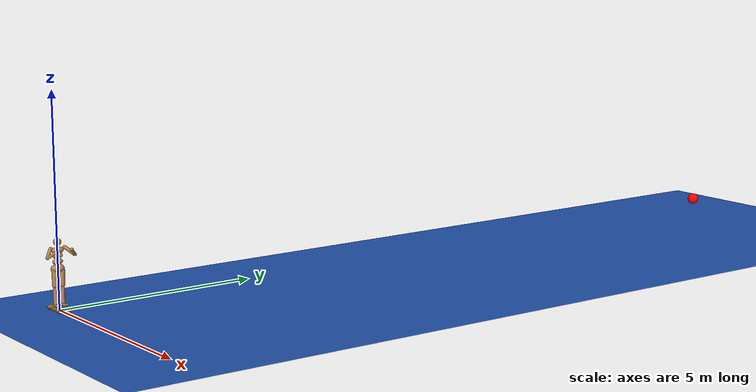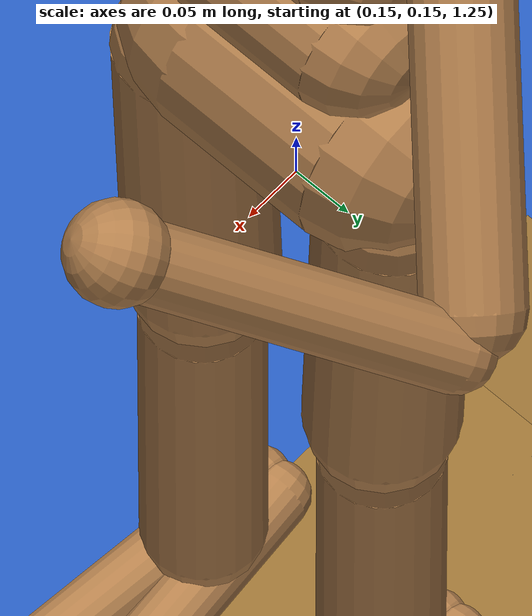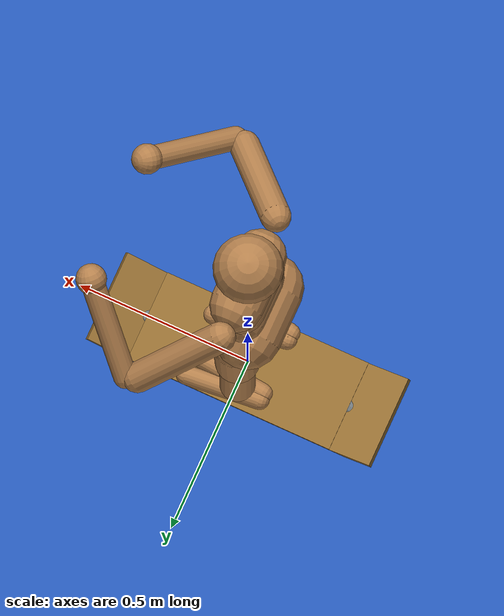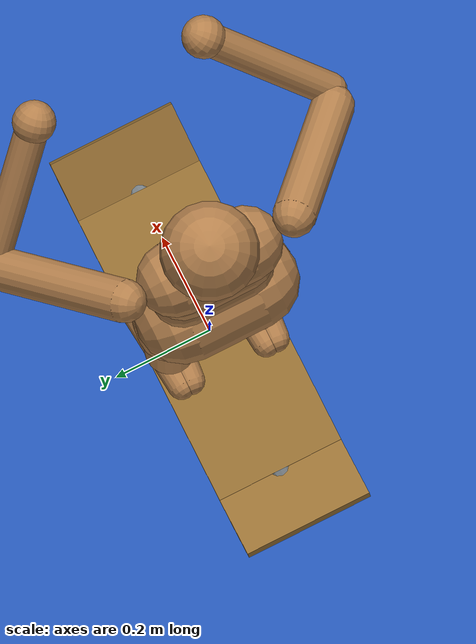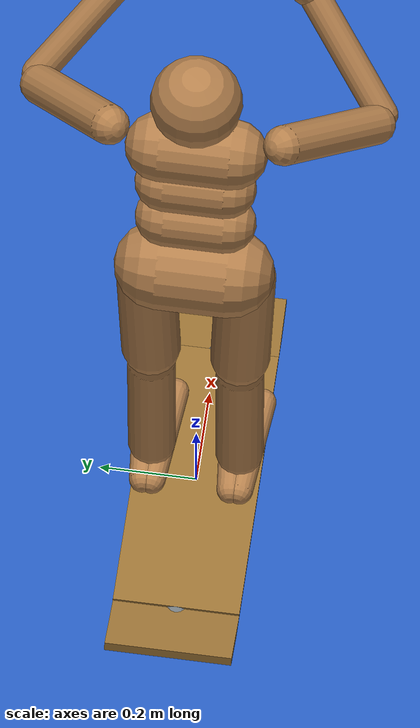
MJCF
<mujoco model="Skateboard Humanoid">
  <include file="../../common.xml"/>
  <include file="./humanoid.xml" />
  <include file="../skateboard.xml" />
  <size memory="800K"/>
  <!-- add physics time step 0.015-->
  <option timestep="0.015"/>
   <custom>
    <numeric name="agent_planner" data="3" />
    <numeric name="agent_horizon" data="0.35" />
    <numeric name="agent_timestep" data="0.015" />
    <numeric name="sampling_spline_points" data="6" />
    <numeric name="sampling_exploration" data="0.05" />
    <numeric name="residual_Height Goal" data="1.35 0.0 1.7" />
    <numeric name="residual_Velocity" data="0 -5 5" />
    <numeric name="residual_Tilt angle" data="0 -0.26 0.26" />
    <numeric name="residual_rFeet pos" data="0 0 1.0" />
    <numeric name="residual_LFeet pos" data="0 0 1.0" />
    <numeric name="residual_rFeet orientation" data="0 -1.56 1.56" />
    <numeric name="ilqg_num_rollouts" data="8" />
    <numeric name="ilqg_regularization_type" data="1" />
    <numeric name="ilqg_representation" data="2" />
  </custom>

  <worldbody>
    <camera name="side-far" mode="trackcom" pos="-3.794 -2.634 2.085" xyaxes="0.536 -0.844 0.000 0.294 0.187 0.937"/>
    <camera name="close" mode="trackcom"  pos="-1.695 -1.870 1.312" xyaxes="0.702 -0.713 -0.000 0.261 0.257 0.930"/>
    <camera name="top" mode="trackcom" pos="-0.405 -1.688 20.714" xyaxes="-0.008 -1.000 0.000 1.000 -0.008 0.017"/>
    <body name="goal" mocap="true" pos=".3 20 0.26">
      <geom size="0.15" contype="0" conaffinity="0" rgba="1 0 0 1" group="2"/>
    </body>
  </worldbody>

  <sensor>
    <user name="Velocity" dim="1" user="0 0 0.0 100.0" />
    <user name="Goal Position" dim="3" user="6 0 0.0 100.0 0.1" />
    <user name="Goal Orientation" dim="1" user="0 0 0 100.0" />
    <user name="Height" dim="1" user="6 80.0 0.0 100.0 0.1" />
    <user name="Balance" dim="1" user="6 50.0 0.0 100.0 0.1" />
    <user name="Board XY" dim="1" user="6 50.0 0.0 100.0 0.1" />
    <user name="Upright" dim="8" user="2 5.0 0.0 25.0 0.01" />
    <user name="CoM Vel." dim="2" user="6 50.0 0.0 100.0 0.1" />
    <user name="Right Foot on Board" dim="1" user="6 40 0.0 100.0 0.1" />
    <user name="Left Foot on Board" dim="1" user="6 40 0.0 100.0 0.1" />
    <user name="Tilt angle" dim="1" user="0 0 0 100.0" />
    <user name="rFeet orientation" dim="1" user="0 0 0 100.0" />

    <user name="Joint Vel." dim="22" user="0 0.01 0.0 0.1" />
    <user name="Control" dim="21" user="3 0.025 0.0 0.1 0.3" />

    <framepos name="trace0" objtype="body" objname="board_center"/>
    <framepos name="torso_position" objtype="body" objname="torso"/>
    <framepos name="head_position" objtype="body" objname="head"/>
    <framequat name="head_orientation" objtype="body" objname="head"/>
    <framezaxis name="torso_zaxis" objtype="body" objname="torso"/>
    <framelinvel name="torso_subtreelinvel" objtype="body" objname="torso" />
    <subtreecom name="torso_subtreecom" body="torso"/>
    <framexaxis name="torso_forward" objtype="body" objname="torso" />

    <framepos name="sp0" objtype="site" objname="sp0"/>
    <framepos name="sp1" objtype="site" objname="sp1"/>
    <framepos name="sp2" objtype="site" objname="sp2"/>
    <framepos name="sp3" objtype="site" objname="sp3"/>
    <framepos name="tracking_foot_left" objtype="site" objname="tracking[ltoe]"/>
    <framepos name="tracking_foot_right" objtype="site" objname="tracking[rtoe]"/>

    <framezaxis name="torso_up" objtype="xbody" objname="torso"/>
    <framezaxis name="pelvis_up" objtype="xbody" objname="pelvis"/>

    <framezaxis name="foot_right_up" objtype="xbody" objname="foot_right"/>
    <framezaxis name="foot_left_up" objtype="xbody" objname="foot_left"/>

    <framepos name="track-back-plate" objtype="site" objname="track-back-plate"/>
    <framepos name="track-front-plate" objtype="site" objname="track-front-plate"/>

    <subtreelinvel name="foot_right_vel" body="foot_right"/>
    <subtreelinvel name="foot_left_vel" body="foot_left"/>
    <framelinvel name="skateboard_framelinvel" objtype="body" objname="skateboard"/>
  </sensor>

  <keyframe>
   <!-- PUSH INIT -->
    <key name="home" qpos='-0.580893 -0.380911 1.18326 0.473358 -0.0984097 0.130169 0.865624 0.297602 -0.974663 -0.0179795 -0.514885 -0.132614 0.346061 -1.21863 -0.760553 -0.704605 -0.16429 -0.638325 0.352434 -0.651989 0.348715 -0.811043 1.00825 0.791914 -1.73602 0.218656 0.0649717 -1.43441 -0.557197 -0.355524 0.0985215 -0.720079 8.67539e-05 -4.21686e-05 -0.693892 0.0218445 0.0194171 -88.5227 -88.5638 0.0165476 -88.4953 -88.5503'/>

  <!-- UPRIGHT INITIAL SPEED -->
  <key name="upright_speed" qpos='-0.346285 1.58886 1.30323 0.0875386 -0.138341 0.0797165 0.983282 -0.560394 -0.627535 0.023249 -0.0599903 -0.111583 -0.228211 -0.746062 -0.155623 0.149264 0.179301 0.541888 0.286944 -0.705611 -0.602122 -0.206549 0.48941 0.135232 -1.75036 0.545177 0.254236 -1.6021 -0.346531 1.63963 0.0985581 -0.690693 0.00026086 0.000693116 -0.723147 0.041312 0.0242612 -36.7335 -36.7295 0.0243332 -36.7253 -36.7376'
  qvel="0 5 0 0 0 0 0 0 0 0 0 0 0 0 0 0 0 0 0 0 0 0 0 0 0 0 0 0 5 0 0 0 0 0 0 0 0 0 0 0"/>
  <!-- CROUCHED INITIAL SPEED -->
  <key name="crouched_speed"  qpos='-0.525946 -0.36578 1.09431 0.337874 -0.134928 0.205427 0.908535 -0.424578 -0.16616 -0.495801 -0.468328 0.569092 -1.67877 -1.20059 -0.434139 0.306221 0.00660043 -0.883754 -1.32983 -1.83521 -1.04158 -0.184538 0.146789 -0.429759 -0.396783 0.950078 0.0303084 -1.71569 -0.538169 -0.366389 0.0992553 -0.716109 -0.00195445 0.0019973 -0.697983 -0.0288003 -0.0193057 -88.8849 -88.919 -0.0194575 -88.7806 -88.851'
  qvel="0 5 0 0 0 0 0 0 0 0 0 0 0 0 0 0 0 0 0 0 0 0 0 0 0 0 0 0 4.5 0 0 0 0 0 0 0 0 0 0 0"/>
  <!-- WELDED PUSH INIT -->
  <key name="weld_push" qpos='-0.704934 -0.271105 1.17139 0.601998 0.0285527 -0.0176907 0.797791 -0.290037 0.0614182 -0.071186 0.166288 0.0842589 -0.598809 -1.50382 -0.876758 -0.182495 -0.268364 -0.183978 -0.353662 -1.07908 -0.631876 1.23081 0.970828 -0.664467 -1.75432 1.05474 -0.663433 -1.75382 -0.675349 -0.267592 0.0983024 -0.711107 0.000421966 0.000333692 -0.703084 0.0446937 0.0220051 -93.2538 -93.1654 0.0223697 -93.1169 -93.3272'
  qvel="0 0 0 0 0 0 0 0 0 0 0 0 0 0 0 0 0 0 0 0 0 0 0 0 0 0 0 0 0 0 0 0 0 0 0 0 0 0 0 0"/>

  </keyframe>
  <equality>
  </equality>
  <contact>
    <exclude body1="foot_right" body2="wheel-front-left"/>
    <exclude body1="foot_right" body2="wheel-front-right"/>
    <exclude body1="foot_left" body2="wheel-back-left"/>
    <exclude body1="foot_left" body2="wheel-back-right"/>
    <exclude body1="foot_left" body2="bushings-and-hanger-back"/>
    <exclude body1="foot_left" body2="baseplate-back"/>
    <exclude body1="shin_left" body2="wheel-back-left"/>
    <exclude body1="shin_left" body2="wheel-back-right"/>
    <exclude body1="shin_left" body2="bushings-and-hanger-back"/>
    <exclude body1="shin_left" body2="baseplate-back"/>
  </contact>
</mujoco>

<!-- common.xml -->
<mujoco>

    <visual>
        <headlight ambient=".4 .4 .4" diffuse=".8 .8 .8" specular="0.1 0.1 0.1"/>
        <map znear=".01"/>
        <quality shadowsize="2048"/>
        <global elevation="-15"/>
    </visual>

    <asset>
        <texture name="blue_grid" type="2d" builtin="checker" rgb1=".02 .14 .44" rgb2=".27 .55 1" width="300" height="300" mark="edge" markrgb="1 1 1"/>
        <material name="blue_grid" texture="blue_grid" texrepeat="1 1" texuniform="true" reflectance=".2"/>

        <texture name="grey_grid" type="2d" builtin="checker" rgb1=".26 .26 .26" rgb2=".6 .6 .6" width="300" height="300" mark="edge" markrgb="1 1 1"/>
        <material name="grey_grid" texture="grey_grid" texrepeat="1 1" texuniform="true" reflectance=".2"/>
        <texture name="skybox" type="skybox" builtin="gradient" rgb1=".66 .79 1" rgb2=".9 .91 .93" width="800" height="800"/>

        <material name="self" rgba=".7 .5 .3 1"/>
        <material name="self_default" rgba=".7 .5 .3 1"/>
        <material name="self_highlight" rgba="0 .5 .3 1"/>
        <material name="effector" rgba=".7 .4 .2 1"/>
        <material name="effector_default" rgba=".7 .4 .2 1"/>
        <material name="effector_highlight" rgba="0 .5 .3 1"/>
        <material name="decoration" rgba=".2 .6 .3 1"/>
        <material name="eye" rgba="0 .2 1 1"/>
        <material name="target" rgba=".6 .3 .3 1"/>
        <material name="target_default" rgba=".6 .3 .3 1"/>
        <material name="target_highlight" rgba=".6 .3 .3 .4"/>
        <material name="site" rgba=".5 .5 .5 .3"/>
    </asset>

    <size memory="1M"/>

    <statistic extent="0.4" center="0.3 0.1 0"/>

    <visual>
        <quality shadowsize="8192"/>
        <global azimuth="180" elevation="-30"/>
    </visual>

    <default>
        <geom friction="1.0"/>
    </default>

    <compiler angle="radian" autolimits="true"/>

    <asset>
        <mesh name="apple" file="../../shared_assets/apple/apple.obj" />
        <mesh name="apple_contact0" file="../../shared_assets/apple/contact0.stl"  />
        <mesh name="apple_contact1" file="../../shared_assets/apple/contact1.stl"  />

        <mesh name="doorknob" file="../../shared_assets/doorknob/doorknob.obj" />

        <mesh name="flashlight" file="../../shared_assets/flashlight/flashlight.obj" />
        <mesh name="flashlight_contact0" file="../../shared_assets/flashlight/contact0.stl"  />
        <mesh name="flashlight_contact1" file="../../shared_assets/flashlight/contact1.stl"  />

        <mesh name="hammer" file="../../shared_assets/hammer/hammer.obj" />
        <mesh name="hammer_contact0" file="../../shared_assets/hammer/contact0.stl"  />
        <mesh name="hammer_contact1" file="../../shared_assets/hammer/contact1.stl"  />

        <mesh name="phone" file="../../shared_assets/phone/phone.obj" />
        <mesh name="phone_contact0" file="../../shared_assets/phone/contact0.stl"  />
        <mesh name="phone_contact1" file="../../shared_assets/phone/contact1.stl"  />
        <mesh name="phone_contact2" file="../../shared_assets/phone/contact2.stl"  />

        <mesh name="stapler" file="../../shared_assets/stapler/stapler.obj" />
        <mesh name="stapler_contact0" file="../../shared_assets/stapler/contact0.stl"  />
        <mesh name="stapler_contact1" file="../../shared_assets/stapler/contact1.stl"  />
        <mesh name="stapler_contact2" file="../../shared_assets/stapler/contact2.stl"  />
        <mesh name="stapler_contact3" file="../../shared_assets/stapler/contact3.stl"  />
        <mesh name="stapler_contact4" file="../../shared_assets/stapler/contact4.stl"  />

        <mesh name="waterbottle" file="../../shared_assets/waterbottle/waterbottle.obj" />
        <mesh name="waterbottle_contact0" file="../../shared_assets/waterbottle/contact0.stl"  />
        <mesh name="waterbottle_contact1" file="../../shared_assets/waterbottle/contact1.stl"  />
    </asset>

</mujoco>

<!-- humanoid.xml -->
<mujoco model="Humanoid">

  <statistic extent="2" center="0 0 1"/>

  <default>
    <motor ctrlrange="-1 1" ctrllimited="true"/>
    <site size=".04" group="3"/>
    <default class="body">

      <!-- geoms -->
      <geom type="capsule" condim="1" friction=".7" solimp=".9 .99 .003" solref=".015 1" material="self"/>
      <default class="thigh">
        <geom size=".06"/>
      </default>
      <default class="shin">
        <geom fromto="0 0 0 0 0 -.35"  size=".049"/>
      </default>
      <default class="foot">
        <geom size=".027"/>
        <default class="foot1">
          <geom fromto="-.07 -.01 0 .14 -.03 0"/>
        </default>
        <default class="foot2">
          <geom fromto="-.07 .01 0 .14  .03 0"/>
        </default>
      </default>
      <default class="arm_upper">
        <geom size=".04"/>
      </default>
      <default class="arm_lower">
        <geom size=".031"/>
      </default>
      <default class="hand">
        <geom type="sphere" size=".04"/>
      </default>

      <!-- joints -->
      <joint type="hinge" damping=".2" stiffness="1" armature=".01" limited="true" solimplimit="0 .99 .01"/>
      <default class="joint_big">
        <joint damping="5" stiffness="10"/>
        <default class="hip_x">
          <joint range="-30 10"/>
        </default>
        <default class="hip_z">
          <joint range="-60 35"/>
        </default>
        <default class="hip_y">
          <joint axis="0 1 0" range="-150 20"/>
        </default>
        <default class="joint_big_stiff">
          <joint stiffness="20"/>
        </default>
      </default>
      <default class="knee">
        <joint pos="0 0 .02" axis="0 -1 0" range="-160 2"/>
      </default>
      <default class="ankle">
        <joint range="-70 70"/>
        <default class="ankle_y">
          <joint pos="0 0 .08" axis="0 1 0" stiffness="6"/>
        </default>
        <default class="ankle_x">
          <joint pos="0 0 .04" stiffness="3"/>
        </default>
      </default>
      <default class="shoulder">
        <joint range="-85 60"/>
      </default>
      <default class="elbow">
        <joint range="-100 50" stiffness="0"/>
      </default>

      <!-- tracking site -->
      <default class="tracking_site">
        <site type="sphere" size="0.027" rgba="1 0 0 1" group="3"/>
      </default>
    </default>
  </default>

  <worldbody>
    <geom name="floor" type="plane" conaffinity="1" size="50 50 .05" material="blue_grid"/>
    <!-- turn 90 degrees -->
    <body name="torso" pos="0 0 1.382" childclass="body">
      <light name="top" pos="0 0 2" mode="trackcom"/>
      <camera name="back" pos="-3 0 1" xyaxes="0 -1 0 1 0 2" mode="trackcom"/>
      <camera name="side" pos="0 -3 1" xyaxes="1 0 0 0 1 2" mode="trackcom"/>
      <freejoint name="root"/>
      <geom name="torso" fromto="0 -.07 0 0 .07 0" size=".07"/>
      <geom name="waist_upper" fromto="-.01 -.06 -.12 -.01 .06 -.12" size=".06"/>
      <body name="head" pos="0 0 .19">
        <geom name="head" type="sphere" size=".09"/>
        <site name="tracking[head]" class="tracking_site" pos="0.09 0 0" />
        <camera name="egocentric" pos=".09 0 0" xyaxes="0 -1 0 .1 0 1" fovy="80"/>
      </body>
      <body name="waist_lower" pos="-.01 0 -.26">
        <geom name="waist_lower" fromto="0 -.06 0 0 .06 0" size=".06" />
        <joint name="abdomen_z" pos="0 0 .065" axis="0 0 1" range="-45 45" class="joint_big_stiff"/>
        <joint name="abdomen_y" pos="0 0 .065" axis="0 1 0" range="-75 30" class="joint_big"/>
        <body name="pelvis" pos="0 0 -.165">
          <site name="tracking[pelvis]" class="tracking_site" pos="0 0 0.075" size=".05" />
          <joint name="abdomen_x" pos="0 0 .1" axis="1 0 0" range="-35 35" class="joint_big"/>
          <geom name="butt" fromto="-.02 -.07 0 -.02 .07 0" size=".09"/>
          <body name="thigh_right" pos="0 -.1 -.04">
            <site name="tracking[rhip]" class="tracking_site" pos="0 0.025 0.025" />
            <joint name="hip_x_right" axis="1 0 0" class="hip_x"/>
            <joint name="hip_z_right" axis="0 0 1" class="hip_z"/>
            <joint name="hip_y_right" class="hip_y"/>
            <geom name="thigh_right" fromto="0 0 0 0 .01 -.34" class="thigh"/>
            <body name="shin_right" pos="0 .01 -.4">
              <joint name="knee_right" class="knee"/>
              <site name="tracking[rknee]" class="tracking_site" pos="0 0 0.05" />
              <geom name="shin_right" class="shin"/>
              <body name="foot_right" pos="0 0 -.39">
                <joint name="ankle_y_right" class="ankle_y"/>
                <joint name="ankle_x_right" class="ankle_x" axis="1 0 .5"/>
                <geom name="foot1_right" class="foot1"/>
                <geom name="foot2_right" class="foot2"/>
                <site name="foot_right" pos=".05 .03 0" type="sphere" size=".027"/>
                <site name="sp2" pos="-.07 0 0" type="sphere" size=".027"/>
                <site name="sp3" pos=".14 0 0" type="sphere" size=".027"/>
                <body name="heel_right" pos="-0.05 0 0.04">
                  <site name="tracking[rheel]" class="tracking_site" />
                </body>
                <body name="toe_right" pos="0.07 0 -0.01">
                  <site name="tracking[rtoe]" class="tracking_site" />
                </body>
              </body>
            </body>
          </body>
          <body name="thigh_left" pos="0 .1 -.04">
            <site name="tracking[lhip]" class="tracking_site" pos="0 -0.025 0.025" />
            <joint name="hip_x_left" axis="-1 0 0" class="hip_x"/>
            <joint name="hip_z_left" axis="0 0 -1" class="hip_z"/>
            <joint name="hip_y_left" class="hip_y"/>
            <geom name="thigh_left" fromto="0 0 0 0 -.01 -.34" class="thigh"/>
            <body name="shin_left" pos="0 -.01 -.4">
              <joint name="knee_left" class="knee"/>
              <site name="tracking[lknee]" class="tracking_site" pos="0 0 0.05" />
              <geom name="shin_left" fromto="0 0 0 0 0 -.35" class="shin"/>
              <body name="foot_left" pos="0 0 -.39">
                <joint name="ankle_y_left" class="ankle_y"/>
                <joint name="ankle_x_left" class="ankle_x" axis="-1 0 -.5"/>
                <geom name="foot1_left" class="foot1"/>
                <geom name="foot2_left" class="foot2"/>
                <site name="foot_left" pos=".05 -.03 0" type="sphere" size=".027"/>
                <site name="sp0" pos="-.07 0 0" type="sphere" size=".027"/>
                <site name="sp1" pos=".14 0 0" type="sphere" size=".027"/>
                <body name="heel_left" pos="-0.05 0 0.04">
                  <site name="tracking[lheel]" class="tracking_site" />
                </body>
                <body name="toe_left" pos="0.07 0 -0.01">
                  <site name="tracking[ltoe]" class="tracking_site" />
                </body>
              </body>
            </body>
          </body>
        </body>
      </body>
      <body name="upper_arm_right" pos="0 -.17 .06">
        <site name="tracking[rshoulder]" class="tracking_site" />
        <joint name="shoulder1_right" axis="2 1 1"  class="shoulder"/>
        <joint name="shoulder2_right" axis="0 -1 1" class="shoulder"/>
        <geom name="upper_arm_right" fromto="0 0 0 .16 -.16 -.16" class="arm_upper"/>
        <body name="lower_arm_right" pos=".18 -.18 -.18">
          <joint name="elbow_right" axis="0 -1 1" class="elbow"/>
          <site name="tracking[relbow]" class="tracking_site" />
          <site name="tracking[rhand]" class="tracking_site" pos="0.13 0.13 0.13" />
          <geom name="lower_arm_right" fromto=".01 .01 .01 .17 .17 .17" class="arm_lower"/>
          <body name="hand_right" pos=".18 .18 .18">
            <geom name="hand_right" zaxis="1 1 1" class="hand"/>
          </body>
        </body>
      </body>
      <body name="upper_arm_left" pos="0 .17 .06">
        <site name="tracking[lshoulder]" class="tracking_site" />
        <joint name="shoulder1_left" axis="-2 1 -1" class="shoulder"/>
        <joint name="shoulder2_left" axis="0 -1 -1"  class="shoulder"/>
        <geom name="upper_arm_left" fromto="0 0 0 .16 .16 -.16" class="arm_upper"/>
        <body name="lower_arm_left" pos=".18 .18 -.18">
          <joint name="elbow_left" axis="0 -1 -1" class="elbow"/>
          <site name="tracking[lelbow]" class="tracking_site" />
          <site name="tracking[lhand]" class="tracking_site" pos="0.13 -0.13 0.13" />
          <geom name="lower_arm_left" fromto=".01 -.01 .01 .17 -.17 .17" class="arm_lower"/>
          <body name="hand_left" pos=".18 -.18 .18">
            <geom name="hand_left" zaxis="1 -1 1" class="hand"/>
          </body>
        </body>
      </body>
    </body>
  </worldbody>

  <contact>
    <exclude body1="waist_lower" body2="thigh_right"/>
    <exclude body1="waist_lower" body2="thigh_left"/>
    <!-- exclude shin and feet -->
    <exclude body1="shin_right" body2="foot_right"/>
    <exclude body1="shin_left" body2="foot_left"/>
  </contact>

  <tendon>
    <fixed name="hamstring_right" limited="true" range="-0.3 2">
      <joint joint="hip_y_right" coef=".5"/>
      <joint joint="knee_right" coef="-.5"/>
    </fixed>
    <fixed name="hamstring_left" limited="true" range="-0.3 2">
      <joint joint="hip_y_left" coef=".5"/>
      <joint joint="knee_left" coef="-.5"/>
    </fixed>
  </tendon>

  <actuator>
    <motor name="abdomen_y"       gear="40"  joint="abdomen_y"/>
    <motor name="abdomen_z"       gear="40"  joint="abdomen_z"/>
    <motor name="abdomen_x"       gear="40"  joint="abdomen_x"/>
    <motor name="hip_x_right"     gear="40"  joint="hip_x_right"/>
    <motor name="hip_z_right"     gear="40"  joint="hip_z_right"/>
    <motor name="hip_y_right"     gear="120" joint="hip_y_right"/>
    <motor name="knee_right"      gear="100" joint="knee_right"/>
    <motor name="ankle_x_right"   gear="20"  joint="ankle_x_right"/>
    <motor name="ankle_y_right"   gear="20"  joint="ankle_y_right"/>
    <motor name="hip_x_left"      gear="40"  joint="hip_x_left"/>
    <motor name="hip_z_left"      gear="40"  joint="hip_z_left"/>
    <motor name="hip_y_left"      gear="120" joint="hip_y_left"/>
    <motor name="knee_left"       gear="100" joint="knee_left"/>
    <motor name="ankle_x_left"    gear="20"  joint="ankle_x_left"/>
    <motor name="ankle_y_left"    gear="20"  joint="ankle_y_left"/>
    <motor name="shoulder1_right" gear="20"  joint="shoulder1_right"/>
    <motor name="shoulder2_right" gear="20"  joint="shoulder2_right"/>
    <motor name="elbow_right"     gear="40"  joint="elbow_right"/>
    <motor name="shoulder1_left"  gear="20"  joint="shoulder1_left"/>
    <motor name="shoulder2_left"  gear="20"  joint="shoulder2_left"/>
    <motor name="elbow_left"      gear="40"  joint="elbow_left"/>
  </actuator>

</mujoco>

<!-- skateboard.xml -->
<mujoco model="skateboard">
  <default>
    <default class="skateboard">
      <default class="truck">
        <geom type="capsule" size="0.03" rgba="0.4414 0.4727 0.4922 1"/>
      </default>
      <default class="hanger">
        <geom type="capsule" fromto="0.0 0.1 -0.05 0.0 -0.1 -0.05" size="0.015" rgba="0.4414 0.4727 0.4922 1"/>
      </default>
      <default class="wheel">
        <geom type="sphere" size="0.03" rgba="0.8867 0.2383 0.5781 1"/>
      </default>
      <default class="board-base-ball">
        <default class="board-slider">
          <joint type="slide" limited="false" stiffness="0" damping="1" frictionloss="0" armature="0"/>
          <motor ctrllimited="true" ctrlrange="-1 1" gear="50" />
        </default>
        <default class="board-ball">
          <joint type="ball" limited="false" damping="3"/>
        </default>
      </default>

      <default class="hanger-rotate">
        <joint type="hinge" axis="0 0 1" range="-1 1" limited="true" damping="2" stiffness="50"/>
      </default>
      <default class="hanger-rotate-back">
        <joint type="hinge" axis="0 0 -1" range="-1 1" limited="true" damping="2" stiffness="50"/>
      </default>
      <default class="board-tilt">
        <joint type="hinge" axis="-1 0 0" range="-10 10" limited="true" springdamper="10 10"/>
      </default>
    </default>

    <default class="tracking_site_board">
      <site type="sphere" size="0.027" rgba="1 0 0 1" group="3"/>
    </default>
  </default>

  <worldbody>
    <camera name="back-x" pos="-3 0 2" xyaxes="0 -1 0 1 0 2" mode="trackcom"/>
    <camera name="side-y" pos="0 -3 2" xyaxes="1 0 0 0 1 2" mode="trackcom"/>
    <camera name="far_chase" pos="-6.134 -6.556 5.138" xyaxes="0.746 -0.666 0.000 0.283 0.317 0.905" mode="trackcom"/>

    <body name="skateboard" pos="0 0 0">
      <freejoint/>
      <!-- board -->
      <body name="board">
        <joint name="board-tilt" class="board-tilt"/>
        <!-- joint board-tilt -->
        <body name="board_center">
          <geom name="board-base" type="box" friction="2 1 1" size="0.3 0.13 0.01" rgba="0.5859 0.4336 0.1992 1" />
        </body>
        <geom name="board-nose" type="box" friction="2 1 1" size="0.075 0.13 0.01" pos="0.35 0.0 0.01" quat="-0.9659 0 0.1588 0" rgba="0.5859 0.4336 0.1992 1"/>
        <geom name="board-tail" type="box" friction="2 1 1" size="0.075 0.13 0.01" pos="-0.35 0.0 0.01" quat="0.9659 0 0.1588 0" rgba="0.5859 0.4336 0.1992 1"/>
      </body>
      <!-- trucks -->
      <geom name="truck-nose" class="truck" fromto="0.20 0.0 -0.020 0.30 0.0 -0.020" mass="5"/>
      <geom name="truck-tail" class="truck" fromto="-0.20 0.0 -0.020 -0.30 0.0 -0.020" mass="5"/>

      <!-- Baseplate -->
      <body name="baseplate-front" pos="0.25 0.0 -0.01">
        <!-- rotate -->
        <body name="kingpin-front" pos="0 0 -0.01">
          <site name="track-front-plate" class="tracking_site_board"  pos="-0.05 0.00 0.05" />
          <geom type="capsule" fromto="0 0 0 0 0 -0.02" size="0.01" rgba="0.5 0.5 0.5 1"/>
          <joint name="hanger-rotate" class="hanger-rotate"/>
          <!-- Bushings and hanger -->
          <body name="bushings-and-hanger-front" pos="0 0 -0.02">
            <geom name="bottom-bushing-front" type="ellipsoid" size="0.03 0.03 0.01" rgba="1 0 0 1"/>
            <geom name="hanger-front" type="box" size="0.02 0.12 0.02" pos="0 0 -0.03" rgba="0.5 0.5 0.5 1"/>
            <!-- Wheels -->
            <body name="wheel-front-left" pos="0.0 0.15 -0.02" >
              <joint name="wheel-front-left" type="hinge" axis="0 1 0"/>
              <geom type="cylinder" friction="1 0.005 0.2" size="0.04 0.02" rgba="0.1 0.1 0.1 1" quat="0.707 0.707 0 0"/>

            </body>
            <body name="wheel-front-right" pos="0.0 -0.15 -0.02">
              <joint name="wheel-front-right" type="hinge" axis="0 1 0"/>
              <geom type="cylinder" friction="1 0.005 0.2" size="0.04 0.02" rgba="0.1 0.1 0.1 1" quat="0.707 0.707 0 0"/>
            </body>
          </body>
        </body>
      </body>
      <!-- identical but for back truck -->
      <body name="baseplate-back" pos="-0.25 0.0 -0.01">
        <body name="kingpin-back" pos="0 0 -0.01">
          <site name="track-back-plate" class="tracking_site_board"  pos="0.05 0.00 0.05" />
          <geom type="capsule" fromto="0 0 0 0 0 -0.02" size="0.01" rgba="0.5 0.5 0.5 1"/>
          <joint name="hanger-rotate-back" class="hanger-rotate-back"/>
          <!-- Bushings and hanger -->
          <body name="bushings-and-hanger-back" pos="0 0 -0.02">
            <geom name="bottom-bushing-back" type="ellipsoid" size="0.03 0.03 0.01" rgba="1 0 0 1"/>
            <geom name="hanger-back" type="box" size="0.015 0.12 0.015" pos="0 0 -0.03" rgba="0.5 0.5 0.5 1"/>

            <!-- Wheels -->
            <body name="wheel-back-left" pos="0.0 0.15 -0.02">
              <joint name="wheel-back-left" type="hinge" axis="0 1 0"/>
              <geom type="cylinder" friction="1 0.005 0.2" size="0.04 0.02" rgba="0.1 0.1 0.1 1" quat="0.707 0.707 0 0"/>
            </body>
            <body name="wheel-back-right" pos="0.0 -0.15 -0.02">
              <joint name="wheel-back-right" type="hinge" axis="0 1 0"/>
              <geom type="cylinder" friction="1 0.005 0.2" size="0.04 0.02" rgba="0.1 0.1 0.1 1" quat="0.707 0.707 0 0"/>
            </body>
          </body>
        </body>
      </body>
    </body>
  </worldbody>
  <!-- equality/joint between hanger-rotate and hanger-rotate-back -->
  <equality>
    <joint joint1="board-tilt" joint2="hanger-rotate-back" polycoef="0 1 0 0 0"/>
    <joint joint1="board-tilt" joint2="hanger-rotate" polycoef="0 1 0 0 0"/>
    <!-- equal the wheel joints -->
    <joint joint1="wheel-front-left" joint2="wheel-front-right"/>
    <joint joint1="wheel-front-left" joint2="wheel-back-right"/>
    <joint joint1="wheel-front-left" joint2="wheel-back-left"/>
  </equality>
  <!-- exlude contact between all board parts,   trucks and kingpins and hangars -->
  <contact>
        <exclude body1="board" body2="baseplate-front"/>
        <exclude body1="board" body2="baseplate-back"/>
        <exclude body1="board" body2="wheel-front-left"/>
        <exclude body1="board" body2="wheel-front-right"/>
        <exclude body1="board" body2="wheel-back-left"/>
        <exclude body1="board" body2="wheel-back-right"/>
        <exclude body1="board" body2="kingpin-front"/>
        <exclude body1="board" body2="kingpin-back"/>
        <exclude body1="board" body2="bushings-and-hanger-front"/>
        <exclude body1="board" body2="bushings-and-hanger-back"/>

        <exclude body1="board_center" body2="baseplate-front"/>
        <exclude body1="board_center" body2="baseplate-back"/>
        <exclude body1="board_center" body2="wheel-front-left"/>
        <exclude body1="board_center" body2="wheel-front-right"/>
        <exclude body1="board_center" body2="wheel-back-left"/>
        <exclude body1="board_center" body2="wheel-back-right"/>
        <exclude body1="board_center" body2="kingpin-front"/>
        <exclude body1="board_center" body2="kingpin-back"/>
        <exclude body1="board_center" body2="bushings-and-hanger-front"/>
        <exclude body1="board_center" body2="bushings-and-hanger-back"/>

        <exclude body1="baseplate-front" body2="wheel-front-left"/>
        <exclude body1="baseplate-front" body2="wheel-front-right"/>
        <exclude body1="baseplate-front" body2="wheel-back-left"/>
        <exclude body1="baseplate-front" body2="wheel-back-right"/>
        <exclude body1="baseplate-back" body2="wheel-front-left"/>
        <exclude body1="baseplate-back" body2="wheel-front-right"/>
        <exclude body1="baseplate-back" body2="wheel-back-left"/>
        <exclude body1="baseplate-back" body2="wheel-back-right"/>
        <exclude body1="wheel-front-left" body2="wheel-front-right"/>
        <exclude body1="wheel-front-left" body2="wheel-back-left"/>
        <exclude body1="wheel-front-left" body2="wheel-back-right"/>
        <exclude body1="wheel-front-right" body2="wheel-back-left"/>
        <exclude body1="wheel-front-right" body2="wheel-back-right"/>
        <exclude body1="wheel-back-left" body2="wheel-back-right"/>
        <exclude body1="baseplate-front" body2="baseplate-back"/>
        <exclude body1="baseplate-front" body2="kingpin-front"/>
        <exclude body1="baseplate-front" body2="kingpin-back"/>
        <exclude body1="baseplate-front" body2="bushings-and-hanger-front"/>
        <exclude body1="baseplate-front" body2="bushings-and-hanger-back"/>
        <exclude body1="baseplate-back" body2="kingpin-front"/>
        <exclude body1="baseplate-back" body2="kingpin-back"/>
        <exclude body1="baseplate-back" body2="bushings-and-hanger-front"/>
        <exclude body1="baseplate-back" body2="bushings-and-hanger-back"/>
        <exclude body1="kingpin-front" body2="kingpin-back"/>
        <exclude body1="kingpin-front" body2="bushings-and-hanger-front"/>
        <exclude body1="kingpin-front" body2="bushings-and-hanger-back"/>
        <exclude body1="kingpin-back" body2="bushings-and-hanger-front"/>
        <exclude body1="kingpin-back" body2="bushings-and-hanger-back"/>
        <exclude body1="bushings-and-hanger-front" body2="bushings-and-hanger-back"/>
      </contact>
</mujoco>
